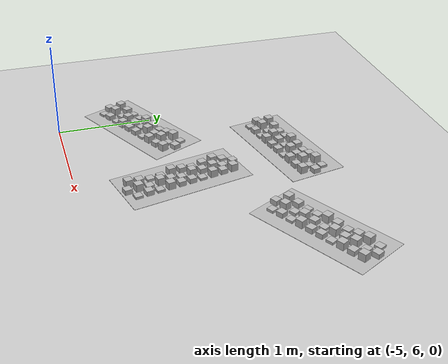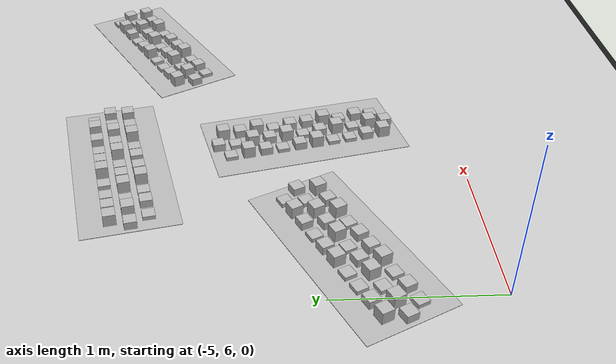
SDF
<sdf version="1.6">
 <world name="default">
  <model name="ground_plane">
   <static>1</static>
   <link name="link">
    <collision name="collision">
     <geometry><plane><normal>0 0 1</normal><size>100 100</size></plane></geometry>
     <surface>
      <contact><collide_bitmask>65535</collide_bitmask></contact>
      <friction><ode><mu>100</mu><mu2>50</mu2></ode></friction>
     </surface>
    </collision>
    <visual name="visual">
     <cast_shadows>0</cast_shadows>
     <geometry><plane><normal>0 0 1</normal><size>100 100</size></plane></geometry>
     <material>
      <script><uri>file://media/materials/scripts/gazebo.material</uri><name>Gazebo/Grey</name></script>
     </material>
    </visual>
   </link>
  </model>
  <model name="frc2016_roughterrain_clone_clone_12_clone_clone_clone_clone_clone_1_clone_clone">
   <static>1</static>
   <link name="link">
    <visual name="platform">
     <pose>0 0 0.08269 0 -0 0</pose>
     <geometry><box><size>1.27 0.5969 0.003175</size></box></geometry>
    </visual>
    <collision name="platform">
     <pose>0 0 0.08269 0 -0 0</pose>
     <geometry><box><size>1.27 0.5969 0.003175</size></box></geometry>
    </collision>
    <visual name="row1_block1_sm">
     <pose>0.51435 0.1143 0.09698 0 -0 0</pose>
     <geometry><box><size>0.0762 0.0762 0.0254</size></box></geometry>
    </visual>
    <collision name="row1_block1_sm">
     <pose>0.51435 0.1143 0.09698 0 -0 0</pose>
     <geometry><box><size>0.0762 0.0762 0.0254</size></box></geometry>
    </collision>
    <visual name="row1_block2_lg">
     <pose>0.40005 0.1143 0.12238 0 -0 0</pose>
     <geometry><box><size>0.0762 0.0762 0.0762</size></box></geometry>
    </visual>
    <collision name="row1_block2_lg">
     <pose>0.40005 0.1143 0.12238 0 -0 0</pose>
     <geometry><box><size>0.0762 0.0762 0.0762</size></box></geometry>
    </collision>
    <visual name="row1_block3_md">
     <pose>0.28575 0.1143 0.10968 0 -0 0</pose>
     <geometry><box><size>0.0762 0.0762 0.0508</size></box></geometry>
    </visual>
    <collision name="row1_block3_md">
     <pose>0.28575 0.1143 0.10968 0 -0 0</pose>
     <geometry><box><size>0.0762 0.0762 0.0508</size></box></geometry>
    </collision>
    <visual name="row1_block4_sm">
     <pose>0.17145 0.1143 0.09698 0 -0 0</pose>
     <geometry><box><size>0.0762 0.0762 0.0254</size></box></geometry>
    </visual>
    <collision name="row1_block4_sm">
     <pose>0.17145 0.1143 0.09698 0 -0 0</pose>
     <geometry><box><size>0.0762 0.0762 0.0254</size></box></geometry>
    </collision>
    <visual name="row1_block5_md">
     <pose>0.05715 0.1143 0.10968 0 -0 0</pose>
     <geometry><box><size>0.0762 0.0762 0.0508</size></box></geometry>
    </visual>
    <collision name="row1_block5_md">
     <pose>0.05715 0.1143 0.10968 0 -0 0</pose>
     <geometry><box><size>0.0762 0.0762 0.0508</size></box></geometry>
    </collision>
    <visual name="row1_block6_lg">
     <pose>-0.05715 0.1143 0.12238 0 -0 0</pose>
     <geometry><box><size>0.0762 0.0762 0.0762</size></box></geometry>
    </visual>
    <collision name="row1_block6_lg">
     <pose>-0.05715 0.1143 0.12238 0 -0 0</pose>
     <geometry><box><size>0.0762 0.0762 0.0762</size></box></geometry>
    </collision>
    <visual name="row1_block7_sm">
     <pose>-0.17145 0.1143 0.09698 0 -0 0</pose>
     <geometry><box><size>0.0762 0.0762 0.0254</size></box></geometry>
    </visual>
    <collision name="row1_block7_sm">
     <pose>-0.17145 0.1143 0.09698 0 -0 0</pose>
     <geometry><box><size>0.0762 0.0762 0.0254</size></box></geometry>
    </collision>
    <visual name="row1_block8_sm">
     <pose>-0.28575 0.1143 0.09698 0 -0 0</pose>
     <geometry><box><size>0.0762 0.0762 0.0254</size></box></geometry>
    </visual>
    <collision name="row1_block8_sm">
     <pose>-0.28575 0.1143 0.09698 0 -0 0</pose>
     <geometry><box><size>0.0762 0.0762 0.0254</size></box></geometry>
    </collision>
    <visual name="row1_block9_md">
     <pose>-0.40005 0.1143 0.10968 0 -0 0</pose>
     <geometry><box><size>0.0762 0.0762 0.0508</size></box></geometry>
    </visual>
    <collision name="row1_block9_md">
     <pose>-0.40005 0.1143 0.10968 0 -0 0</pose>
     <geometry><box><size>0.0762 0.0762 0.0508</size></box></geometry>
    </collision>
    <visual name="row1_block10_lg">
     <pose>-0.51435 0.1143 0.12238 0 -0 0</pose>
     <geometry><box><size>0.0762 0.0762 0.0762</size></box></geometry>
    </visual>
    <collision name="row1_block10_lg">
     <pose>-0.51435 0.1143 0.12238 0 -0 0</pose>
     <geometry><box><size>0.0762 0.0762 0.0762</size></box></geometry>
    </collision>
    <visual name="row2_block1_md">
     <pose>0.5715 0 0.10968 0 -0 0</pose>
     <geometry><box><size>0.0762 0.0762 0.0508</size></box></geometry>
    </visual>
    <collision name="row2_block1_md">
     <pose>0.5715 0 0.10968 0 -0 0</pose>
     <geometry><box><size>0.0762 0.0762 0.0508</size></box></geometry>
    </collision>
    <visual name="row2_block2_sm">
     <pose>0.4572 0 0.09698 0 -0 0</pose>
     <geometry><box><size>0.0762 0.0762 0.0254</size></box></geometry>
    </visual>
    <collision name="row2_block2_sm">
     <pose>0.4572 0 0.09698 0 -0 0</pose>
     <geometry><box><size>0.0762 0.0762 0.0254</size></box></geometry>
    </collision>
    <visual name="row2_block3_lg">
     <pose>0.3429 0 0.12238 0 -0 0</pose>
     <geometry><box><size>0.0762 0.0762 0.0762</size></box></geometry>
    </visual>
    <collision name="row2_block3_lg">
     <pose>0.3429 0 0.12238 0 -0 0</pose>
     <geometry><box><size>0.0762 0.0762 0.0762</size></box></geometry>
    </collision>
    <visual name="row2_block4_md">
     <pose>0.2286 0 0.10968 0 -0 0</pose>
     <geometry><box><size>0.0762 0.0762 0.0508</size></box></geometry>
    </visual>
    <collision name="row2_block4_md">
     <pose>0.2286 0 0.10968 0 -0 0</pose>
     <geometry><box><size>0.0762 0.0762 0.0508</size></box></geometry>
    </collision>
    <visual name="row2_block5_lg">
     <pose>0.1143 0 0.12238 0 -0 0</pose>
     <geometry><box><size>0.0762 0.0762 0.0762</size></box></geometry>
    </visual>
    <collision name="row2_block5_lg">
     <pose>0.1143 0 0.12238 0 -0 0</pose>
     <geometry><box><size>0.0762 0.0762 0.0762</size></box></geometry>
    </collision>
    <visual name="row2_block6_sm">
     <pose>0 0 0.09698 0 -0 0</pose>
     <geometry><box><size>0.0762 0.0762 0.0254</size></box></geometry>
    </visual>
    <collision name="row2_block6_sm">
     <pose>0 0 0.09698 0 -0 0</pose>
     <geometry><box><size>0.0762 0.0762 0.0254</size></box></geometry>
    </collision>
    <visual name="row2_block7_md">
     <pose>-0.1143 0 0.10968 0 -0 0</pose>
     <geometry><box><size>0.0762 0.0762 0.0508</size></box></geometry>
    </visual>
    <collision name="row2_block7_md">
     <pose>-0.1143 0 0.10968 0 -0 0</pose>
     <geometry><box><size>0.0762 0.0762 0.0508</size></box></geometry>
    </collision>
    <visual name="row2_block8_lg">
     <pose>-0.2286 0 0.12238 0 -0 0</pose>
     <geometry><box><size>0.0762 0.0762 0.0762</size></box></geometry>
    </visual>
    <collision name="row2_block8_lg">
     <pose>-0.2286 0 0.12238 0 -0 0</pose>
     <geometry><box><size>0.0762 0.0762 0.0762</size></box></geometry>
    </collision>
    <visual name="row2_block9_sm">
     <pose>-0.3429 0 0.09698 0 -0 0</pose>
     <geometry><box><size>0.0762 0.0762 0.0254</size></box></geometry>
    </visual>
    <collision name="row2_block9_sm">
     <pose>-0.3429 0 0.09698 0 -0 0</pose>
     <geometry><box><size>0.0762 0.0762 0.0254</size></box></geometry>
    </collision>
    <visual name="row2_block10_lg">
     <pose>-0.4572 0 0.12238 0 -0 0</pose>
     <geometry><box><size>0.0762 0.0762 0.0762</size></box></geometry>
    </visual>
    <collision name="row2_block10_lg">
     <pose>-0.4572 0 0.12238 0 -0 0</pose>
     <geometry><box><size>0.0762 0.0762 0.0762</size></box></geometry>
    </collision>
    <visual name="row2_block11_md">
     <pose>-0.5715 0 0.10968 0 -0 0</pose>
     <geometry><box><size>0.0762 0.0762 0.0508</size></box></geometry>
    </visual>
    <collision name="row2_block11_md">
     <pose>-0.5715 0 0.10968 0 -0 0</pose>
     <geometry><box><size>0.0762 0.0762 0.0508</size></box></geometry>
    </collision>
    <visual name="row3_block1_lg">
     <pose>0.51435 -0.1143 0.12238 0 -0 0</pose>
     <geometry><box><size>0.0762 0.0762 0.0762</size></box></geometry>
    </visual>
    <collision name="row3_block1_lg">
     <pose>0.51435 -0.1143 0.12238 0 -0 0</pose>
     <geometry><box><size>0.0762 0.0762 0.0762</size></box></geometry>
    </collision>
    <visual name="row3_block2_md">
     <pose>0.40005 -0.1143 0.10968 0 -0 0</pose>
     <geometry><box><size>0.0762 0.0762 0.0508</size></box></geometry>
    </visual>
    <collision name="row3_block2_md">
     <pose>0.40005 -0.1143 0.10968 0 -0 0</pose>
     <geometry><box><size>0.0762 0.0762 0.0508</size></box></geometry>
    </collision>
    <visual name="row3_block3_lg">
     <pose>0.28575 -0.1143 0.12238 0 -0 0</pose>
     <geometry><box><size>0.0762 0.0762 0.0762</size></box></geometry>
    </visual>
    <collision name="row3_block3_lg">
     <pose>0.28575 -0.1143 0.12238 0 -0 0</pose>
     <geometry><box><size>0.0762 0.0762 0.0762</size></box></geometry>
    </collision>
    <visual name="row3_block4_sm">
     <pose>0.17145 -0.1143 0.09698 0 -0 0</pose>
     <geometry><box><size>0.0762 0.0762 0.0254</size></box></geometry>
    </visual>
    <collision name="row3_block4_sm">
     <pose>0.17145 -0.1143 0.09698 0 -0 0</pose>
     <geometry><box><size>0.0762 0.0762 0.0254</size></box></geometry>
    </collision>
    <visual name="row3_block5_md">
     <pose>0.05715 -0.1143 0.10968 0 -0 0</pose>
     <geometry><box><size>0.0762 0.0762 0.0508</size></box></geometry>
    </visual>
    <collision name="row3_block5_md">
     <pose>0.05715 -0.1143 0.10968 0 -0 0</pose>
     <geometry><box><size>0.0762 0.0762 0.0508</size></box></geometry>
    </collision>
    <visual name="row3_block6_md">
     <pose>-0.05715 -0.1143 0.10968 0 -0 0</pose>
     <geometry><box><size>0.0762 0.0762 0.0508</size></box></geometry>
    </visual>
    <collision name="row3_block6_md">
     <pose>-0.05715 -0.1143 0.10968 0 -0 0</pose>
     <geometry><box><size>0.0762 0.0762 0.0508</size></box></geometry>
    </collision>
    <visual name="row3_block7_lg">
     <pose>-0.17145 -0.1143 0.12238 0 -0 0</pose>
     <geometry><box><size>0.0762 0.0762 0.0762</size></box></geometry>
    </visual>
    <collision name="row3_block7_lg">
     <pose>-0.17145 -0.1143 0.12238 0 -0 0</pose>
     <geometry><box><size>0.0762 0.0762 0.0762</size></box></geometry>
    </collision>
    <visual name="row3_block8_sm">
     <pose>-0.28575 -0.1143 0.09698 0 -0 0</pose>
     <geometry><box><size>0.0762 0.0762 0.0254</size></box></geometry>
    </visual>
    <collision name="row3_block8_sm">
     <pose>-0.28575 -0.1143 0.09698 0 -0 0</pose>
     <geometry><box><size>0.0762 0.0762 0.0254</size></box></geometry>
    </collision>
    <visual name="row3_block9_md">
     <pose>-0.40005 -0.1143 0.10968 0 -0 0</pose>
     <geometry><box><size>0.0762 0.0762 0.0508</size></box></geometry>
    </visual>
    <collision name="row3_block9_md">
     <pose>-0.40005 -0.1143 0.10968 0 -0 0</pose>
     <geometry><box><size>0.0762 0.0762 0.0508</size></box></geometry>
    </collision>
    <visual name="row3_block10_sm">
     <pose>-0.51435 -0.1143 0.09698 0 -0 0</pose>
     <geometry><box><size>0.0762 0.0762 0.0254</size></box></geometry>
    </visual>
    <collision name="row3_block10_sm">
     <pose>-0.51435 -0.1143 0.09698 0 -0 0</pose>
     <geometry><box><size>0.0762 0.0762 0.0254</size></box></geometry>
    </collision>
   </link>
   <pose>-2.40245 8.01789 0 0 -0 0.5</pose>
  </model>
  <model name="frc2016_roughterrain_clone_clone_12_clone_clone_clone_clone_clone_1_clone_clone_0">
   <static>1</static>
   <link name="link">
    <visual name="platform">
     <pose>0 0 0.08269 0 -0 0</pose>
     <geometry><box><size>1.27 0.5969 0.003175</size></box></geometry>
    </visual>
    <collision name="platform">
     <pose>0 0 0.08269 0 -0 0</pose>
     <geometry><box><size>1.27 0.5969 0.003175</size></box></geometry>
    </collision>
    <visual name="row1_block1_sm">
     <pose>0.51435 0.1143 0.09698 0 -0 0</pose>
     <geometry><box><size>0.0762 0.0762 0.0254</size></box></geometry>
    </visual>
    <collision name="row1_block1_sm">
     <pose>0.51435 0.1143 0.09698 0 -0 0</pose>
     <geometry><box><size>0.0762 0.0762 0.0254</size></box></geometry>
    </collision>
    <visual name="row1_block2_lg">
     <pose>0.40005 0.1143 0.12238 0 -0 0</pose>
     <geometry><box><size>0.0762 0.0762 0.0762</size></box></geometry>
    </visual>
    <collision name="row1_block2_lg">
     <pose>0.40005 0.1143 0.12238 0 -0 0</pose>
     <geometry><box><size>0.0762 0.0762 0.0762</size></box></geometry>
    </collision>
    <visual name="row1_block3_md">
     <pose>0.28575 0.1143 0.10968 0 -0 0</pose>
     <geometry><box><size>0.0762 0.0762 0.0508</size></box></geometry>
    </visual>
    <collision name="row1_block3_md">
     <pose>0.28575 0.1143 0.10968 0 -0 0</pose>
     <geometry><box><size>0.0762 0.0762 0.0508</size></box></geometry>
    </collision>
    <visual name="row1_block4_sm">
     <pose>0.17145 0.1143 0.09698 0 -0 0</pose>
     <geometry><box><size>0.0762 0.0762 0.0254</size></box></geometry>
    </visual>
    <collision name="row1_block4_sm">
     <pose>0.17145 0.1143 0.09698 0 -0 0</pose>
     <geometry><box><size>0.0762 0.0762 0.0254</size></box></geometry>
    </collision>
    <visual name="row1_block5_md">
     <pose>0.05715 0.1143 0.10968 0 -0 0</pose>
     <geometry><box><size>0.0762 0.0762 0.0508</size></box></geometry>
    </visual>
    <collision name="row1_block5_md">
     <pose>0.05715 0.1143 0.10968 0 -0 0</pose>
     <geometry><box><size>0.0762 0.0762 0.0508</size></box></geometry>
    </collision>
    <visual name="row1_block6_lg">
     <pose>-0.05715 0.1143 0.12238 0 -0 0</pose>
     <geometry><box><size>0.0762 0.0762 0.0762</size></box></geometry>
    </visual>
    <collision name="row1_block6_lg">
     <pose>-0.05715 0.1143 0.12238 0 -0 0</pose>
     <geometry><box><size>0.0762 0.0762 0.0762</size></box></geometry>
    </collision>
    <visual name="row1_block7_sm">
     <pose>-0.17145 0.1143 0.09698 0 -0 0</pose>
     <geometry><box><size>0.0762 0.0762 0.0254</size></box></geometry>
    </visual>
    <collision name="row1_block7_sm">
     <pose>-0.17145 0.1143 0.09698 0 -0 0</pose>
     <geometry><box><size>0.0762 0.0762 0.0254</size></box></geometry>
    </collision>
    <visual name="row1_block8_sm">
     <pose>-0.28575 0.1143 0.09698 0 -0 0</pose>
     <geometry><box><size>0.0762 0.0762 0.0254</size></box></geometry>
    </visual>
    <collision name="row1_block8_sm">
     <pose>-0.28575 0.1143 0.09698 0 -0 0</pose>
     <geometry><box><size>0.0762 0.0762 0.0254</size></box></geometry>
    </collision>
    <visual name="row1_block9_md">
     <pose>-0.40005 0.1143 0.10968 0 -0 0</pose>
     <geometry><box><size>0.0762 0.0762 0.0508</size></box></geometry>
    </visual>
    <collision name="row1_block9_md">
     <pose>-0.40005 0.1143 0.10968 0 -0 0</pose>
     <geometry><box><size>0.0762 0.0762 0.0508</size></box></geometry>
    </collision>
    <visual name="row1_block10_lg">
     <pose>-0.51435 0.1143 0.12238 0 -0 0</pose>
     <geometry><box><size>0.0762 0.0762 0.0762</size></box></geometry>
    </visual>
    <collision name="row1_block10_lg">
     <pose>-0.51435 0.1143 0.12238 0 -0 0</pose>
     <geometry><box><size>0.0762 0.0762 0.0762</size></box></geometry>
    </collision>
    <visual name="row2_block1_md">
     <pose>0.5715 0 0.10968 0 -0 0</pose>
     <geometry><box><size>0.0762 0.0762 0.0508</size></box></geometry>
    </visual>
    <collision name="row2_block1_md">
     <pose>0.5715 0 0.10968 0 -0 0</pose>
     <geometry><box><size>0.0762 0.0762 0.0508</size></box></geometry>
    </collision>
    <visual name="row2_block2_sm">
     <pose>0.4572 0 0.09698 0 -0 0</pose>
     <geometry><box><size>0.0762 0.0762 0.0254</size></box></geometry>
    </visual>
    <collision name="row2_block2_sm">
     <pose>0.4572 0 0.09698 0 -0 0</pose>
     <geometry><box><size>0.0762 0.0762 0.0254</size></box></geometry>
    </collision>
    <visual name="row2_block3_lg">
     <pose>0.3429 0 0.12238 0 -0 0</pose>
     <geometry><box><size>0.0762 0.0762 0.0762</size></box></geometry>
    </visual>
    <collision name="row2_block3_lg">
     <pose>0.3429 0 0.12238 0 -0 0</pose>
     <geometry><box><size>0.0762 0.0762 0.0762</size></box></geometry>
    </collision>
    <visual name="row2_block4_md">
     <pose>0.2286 0 0.10968 0 -0 0</pose>
     <geometry><box><size>0.0762 0.0762 0.0508</size></box></geometry>
    </visual>
    <collision name="row2_block4_md">
     <pose>0.2286 0 0.10968 0 -0 0</pose>
     <geometry><box><size>0.0762 0.0762 0.0508</size></box></geometry>
    </collision>
    <visual name="row2_block5_lg">
     <pose>0.1143 0 0.12238 0 -0 0</pose>
     <geometry><box><size>0.0762 0.0762 0.0762</size></box></geometry>
    </visual>
    <collision name="row2_block5_lg">
     <pose>0.1143 0 0.12238 0 -0 0</pose>
     <geometry><box><size>0.0762 0.0762 0.0762</size></box></geometry>
    </collision>
    <visual name="row2_block6_sm">
     <pose>0 0 0.09698 0 -0 0</pose>
     <geometry><box><size>0.0762 0.0762 0.0254</size></box></geometry>
    </visual>
    <collision name="row2_block6_sm">
     <pose>0 0 0.09698 0 -0 0</pose>
     <geometry><box><size>0.0762 0.0762 0.0254</size></box></geometry>
    </collision>
    <visual name="row2_block7_md">
     <pose>-0.1143 0 0.10968 0 -0 0</pose>
     <geometry><box><size>0.0762 0.0762 0.0508</size></box></geometry>
    </visual>
    <collision name="row2_block7_md">
     <pose>-0.1143 0 0.10968 0 -0 0</pose>
     <geometry><box><size>0.0762 0.0762 0.0508</size></box></geometry>
    </collision>
    <visual name="row2_block8_lg">
     <pose>-0.2286 0 0.12238 0 -0 0</pose>
     <geometry><box><size>0.0762 0.0762 0.0762</size></box></geometry>
    </visual>
    <collision name="row2_block8_lg">
     <pose>-0.2286 0 0.12238 0 -0 0</pose>
     <geometry><box><size>0.0762 0.0762 0.0762</size></box></geometry>
    </collision>
    <visual name="row2_block9_sm">
     <pose>-0.3429 0 0.09698 0 -0 0</pose>
     <geometry><box><size>0.0762 0.0762 0.0254</size></box></geometry>
    </visual>
    <collision name="row2_block9_sm">
     <pose>-0.3429 0 0.09698 0 -0 0</pose>
     <geometry><box><size>0.0762 0.0762 0.0254</size></box></geometry>
    </collision>
    <visual name="row2_block10_lg">
     <pose>-0.4572 0 0.12238 0 -0 0</pose>
     <geometry><box><size>0.0762 0.0762 0.0762</size></box></geometry>
    </visual>
    <collision name="row2_block10_lg">
     <pose>-0.4572 0 0.12238 0 -0 0</pose>
     <geometry><box><size>0.0762 0.0762 0.0762</size></box></geometry>
    </collision>
    <visual name="row2_block11_md">
     <pose>-0.5715 0 0.10968 0 -0 0</pose>
     <geometry><box><size>0.0762 0.0762 0.0508</size></box></geometry>
    </visual>
    <collision name="row2_block11_md">
     <pose>-0.5715 0 0.10968 0 -0 0</pose>
     <geometry><box><size>0.0762 0.0762 0.0508</size></box></geometry>
    </collision>
    <visual name="row3_block1_lg">
     <pose>0.51435 -0.1143 0.12238 0 -0 0</pose>
     <geometry><box><size>0.0762 0.0762 0.0762</size></box></geometry>
    </visual>
    <collision name="row3_block1_lg">
     <pose>0.51435 -0.1143 0.12238 0 -0 0</pose>
     <geometry><box><size>0.0762 0.0762 0.0762</size></box></geometry>
    </collision>
    <visual name="row3_block2_md">
     <pose>0.40005 -0.1143 0.10968 0 -0 0</pose>
     <geometry><box><size>0.0762 0.0762 0.0508</size></box></geometry>
    </visual>
    <collision name="row3_block2_md">
     <pose>0.40005 -0.1143 0.10968 0 -0 0</pose>
     <geometry><box><size>0.0762 0.0762 0.0508</size></box></geometry>
    </collision>
    <visual name="row3_block3_lg">
     <pose>0.28575 -0.1143 0.12238 0 -0 0</pose>
     <geometry><box><size>0.0762 0.0762 0.0762</size></box></geometry>
    </visual>
    <collision name="row3_block3_lg">
     <pose>0.28575 -0.1143 0.12238 0 -0 0</pose>
     <geometry><box><size>0.0762 0.0762 0.0762</size></box></geometry>
    </collision>
    <visual name="row3_block4_sm">
     <pose>0.17145 -0.1143 0.09698 0 -0 0</pose>
     <geometry><box><size>0.0762 0.0762 0.0254</size></box></geometry>
    </visual>
    <collision name="row3_block4_sm">
     <pose>0.17145 -0.1143 0.09698 0 -0 0</pose>
     <geometry><box><size>0.0762 0.0762 0.0254</size></box></geometry>
    </collision>
    <visual name="row3_block5_md">
     <pose>0.05715 -0.1143 0.10968 0 -0 0</pose>
     <geometry><box><size>0.0762 0.0762 0.0508</size></box></geometry>
    </visual>
    <collision name="row3_block5_md">
     <pose>0.05715 -0.1143 0.10968 0 -0 0</pose>
     <geometry><box><size>0.0762 0.0762 0.0508</size></box></geometry>
    </collision>
    <visual name="row3_block6_md">
     <pose>-0.05715 -0.1143 0.10968 0 -0 0</pose>
     <geometry><box><size>0.0762 0.0762 0.0508</size></box></geometry>
    </visual>
    <collision name="row3_block6_md">
     <pose>-0.05715 -0.1143 0.10968 0 -0 0</pose>
     <geometry><box><size>0.0762 0.0762 0.0508</size></box></geometry>
    </collision>
    <visual name="row3_block7_lg">
     <pose>-0.17145 -0.1143 0.12238 0 -0 0</pose>
     <geometry><box><size>0.0762 0.0762 0.0762</size></box></geometry>
    </visual>
    <collision name="row3_block7_lg">
     <pose>-0.17145 -0.1143 0.12238 0 -0 0</pose>
     <geometry><box><size>0.0762 0.0762 0.0762</size></box></geometry>
    </collision>
    <visual name="row3_block8_sm">
     <pose>-0.28575 -0.1143 0.09698 0 -0 0</pose>
     <geometry><box><size>0.0762 0.0762 0.0254</size></box></geometry>
    </visual>
    <collision name="row3_block8_sm">
     <pose>-0.28575 -0.1143 0.09698 0 -0 0</pose>
     <geometry><box><size>0.0762 0.0762 0.0254</size></box></geometry>
    </collision>
    <visual name="row3_block9_md">
     <pose>-0.40005 -0.1143 0.10968 0 -0 0</pose>
     <geometry><box><size>0.0762 0.0762 0.0508</size></box></geometry>
    </visual>
    <collision name="row3_block9_md">
     <pose>-0.40005 -0.1143 0.10968 0 -0 0</pose>
     <geometry><box><size>0.0762 0.0762 0.0508</size></box></geometry>
    </collision>
    <visual name="row3_block10_sm">
     <pose>-0.51435 -0.1143 0.09698 0 -0 0</pose>
     <geometry><box><size>0.0762 0.0762 0.0254</size></box></geometry>
    </visual>
    <collision name="row3_block10_sm">
     <pose>-0.51435 -0.1143 0.09698 0 -0 0</pose>
     <geometry><box><size>0.0762 0.0762 0.0254</size></box></geometry>
    </collision>
   </link>
   <pose>-3.59319 7.01536 0 0 -0 1.79</pose>
  </model>
  <model name="frc2016_roughterrain_clone_clone_12_clone_clone_clone_clone_clone_clone_1_clone">
   <static>1</static>
   <link name="link">
    <visual name="platform">
     <pose>0 0 0.08269 0 -0 0</pose>
     <geometry><box><size>1.27 0.5969 0.003175</size></box></geometry>
    </visual>
    <collision name="platform">
     <pose>0 0 0.08269 0 -0 0</pose>
     <geometry><box><size>1.27 0.5969 0.003175</size></box></geometry>
    </collision>
    <visual name="row1_block1_sm">
     <pose>0.51435 0.1143 0.09698 0 -0 0</pose>
     <geometry><box><size>0.0762 0.0762 0.0254</size></box></geometry>
    </visual>
    <collision name="row1_block1_sm">
     <pose>0.51435 0.1143 0.09698 0 -0 0</pose>
     <geometry><box><size>0.0762 0.0762 0.0254</size></box></geometry>
    </collision>
    <visual name="row1_block2_lg">
     <pose>0.40005 0.1143 0.12238 0 -0 0</pose>
     <geometry><box><size>0.0762 0.0762 0.0762</size></box></geometry>
    </visual>
    <collision name="row1_block2_lg">
     <pose>0.40005 0.1143 0.12238 0 -0 0</pose>
     <geometry><box><size>0.0762 0.0762 0.0762</size></box></geometry>
    </collision>
    <visual name="row1_block3_md">
     <pose>0.28575 0.1143 0.10968 0 -0 0</pose>
     <geometry><box><size>0.0762 0.0762 0.0508</size></box></geometry>
    </visual>
    <collision name="row1_block3_md">
     <pose>0.28575 0.1143 0.10968 0 -0 0</pose>
     <geometry><box><size>0.0762 0.0762 0.0508</size></box></geometry>
    </collision>
    <visual name="row1_block4_sm">
     <pose>0.17145 0.1143 0.09698 0 -0 0</pose>
     <geometry><box><size>0.0762 0.0762 0.0254</size></box></geometry>
    </visual>
    <collision name="row1_block4_sm">
     <pose>0.17145 0.1143 0.09698 0 -0 0</pose>
     <geometry><box><size>0.0762 0.0762 0.0254</size></box></geometry>
    </collision>
    <visual name="row1_block5_md">
     <pose>0.05715 0.1143 0.10968 0 -0 0</pose>
     <geometry><box><size>0.0762 0.0762 0.0508</size></box></geometry>
    </visual>
    <collision name="row1_block5_md">
     <pose>0.05715 0.1143 0.10968 0 -0 0</pose>
     <geometry><box><size>0.0762 0.0762 0.0508</size></box></geometry>
    </collision>
    <visual name="row1_block6_lg">
     <pose>-0.05715 0.1143 0.12238 0 -0 0</pose>
     <geometry><box><size>0.0762 0.0762 0.0762</size></box></geometry>
    </visual>
    <collision name="row1_block6_lg">
     <pose>-0.05715 0.1143 0.12238 0 -0 0</pose>
     <geometry><box><size>0.0762 0.0762 0.0762</size></box></geometry>
    </collision>
    <visual name="row1_block7_sm">
     <pose>-0.17145 0.1143 0.09698 0 -0 0</pose>
     <geometry><box><size>0.0762 0.0762 0.0254</size></box></geometry>
    </visual>
    <collision name="row1_block7_sm">
     <pose>-0.17145 0.1143 0.09698 0 -0 0</pose>
     <geometry><box><size>0.0762 0.0762 0.0254</size></box></geometry>
    </collision>
    <visual name="row1_block8_sm">
     <pose>-0.28575 0.1143 0.09698 0 -0 0</pose>
     <geometry><box><size>0.0762 0.0762 0.0254</size></box></geometry>
    </visual>
    <collision name="row1_block8_sm">
     <pose>-0.28575 0.1143 0.09698 0 -0 0</pose>
     <geometry><box><size>0.0762 0.0762 0.0254</size></box></geometry>
    </collision>
    <visual name="row1_block9_md">
     <pose>-0.40005 0.1143 0.10968 0 -0 0</pose>
     <geometry><box><size>0.0762 0.0762 0.0508</size></box></geometry>
    </visual>
    <collision name="row1_block9_md">
     <pose>-0.40005 0.1143 0.10968 0 -0 0</pose>
     <geometry><box><size>0.0762 0.0762 0.0508</size></box></geometry>
    </collision>
    <visual name="row1_block10_lg">
     <pose>-0.51435 0.1143 0.12238 0 -0 0</pose>
     <geometry><box><size>0.0762 0.0762 0.0762</size></box></geometry>
    </visual>
    <collision name="row1_block10_lg">
     <pose>-0.51435 0.1143 0.12238 0 -0 0</pose>
     <geometry><box><size>0.0762 0.0762 0.0762</size></box></geometry>
    </collision>
    <visual name="row2_block1_md">
     <pose>0.5715 0 0.10968 0 -0 0</pose>
     <geometry><box><size>0.0762 0.0762 0.0508</size></box></geometry>
    </visual>
    <collision name="row2_block1_md">
     <pose>0.5715 0 0.10968 0 -0 0</pose>
     <geometry><box><size>0.0762 0.0762 0.0508</size></box></geometry>
    </collision>
    <visual name="row2_block2_sm">
     <pose>0.4572 0 0.09698 0 -0 0</pose>
     <geometry><box><size>0.0762 0.0762 0.0254</size></box></geometry>
    </visual>
    <collision name="row2_block2_sm">
     <pose>0.4572 0 0.09698 0 -0 0</pose>
     <geometry><box><size>0.0762 0.0762 0.0254</size></box></geometry>
    </collision>
    <visual name="row2_block3_lg">
     <pose>0.3429 0 0.12238 0 -0 0</pose>
     <geometry><box><size>0.0762 0.0762 0.0762</size></box></geometry>
    </visual>
    <collision name="row2_block3_lg">
     <pose>0.3429 0 0.12238 0 -0 0</pose>
     <geometry><box><size>0.0762 0.0762 0.0762</size></box></geometry>
    </collision>
    <visual name="row2_block4_md">
     <pose>0.2286 0 0.10968 0 -0 0</pose>
     <geometry><box><size>0.0762 0.0762 0.0508</size></box></geometry>
    </visual>
    <collision name="row2_block4_md">
     <pose>0.2286 0 0.10968 0 -0 0</pose>
     <geometry><box><size>0.0762 0.0762 0.0508</size></box></geometry>
    </collision>
    <visual name="row2_block5_lg">
     <pose>0.1143 0 0.12238 0 -0 0</pose>
     <geometry><box><size>0.0762 0.0762 0.0762</size></box></geometry>
    </visual>
    <collision name="row2_block5_lg">
     <pose>0.1143 0 0.12238 0 -0 0</pose>
     <geometry><box><size>0.0762 0.0762 0.0762</size></box></geometry>
    </collision>
    <visual name="row2_block6_sm">
     <pose>0 0 0.09698 0 -0 0</pose>
     <geometry><box><size>0.0762 0.0762 0.0254</size></box></geometry>
    </visual>
    <collision name="row2_block6_sm">
     <pose>0 0 0.09698 0 -0 0</pose>
     <geometry><box><size>0.0762 0.0762 0.0254</size></box></geometry>
    </collision>
    <visual name="row2_block7_md">
     <pose>-0.1143 0 0.10968 0 -0 0</pose>
     <geometry><box><size>0.0762 0.0762 0.0508</size></box></geometry>
    </visual>
    <collision name="row2_block7_md">
     <pose>-0.1143 0 0.10968 0 -0 0</pose>
     <geometry><box><size>0.0762 0.0762 0.0508</size></box></geometry>
    </collision>
    <visual name="row2_block8_lg">
     <pose>-0.2286 0 0.12238 0 -0 0</pose>
     <geometry><box><size>0.0762 0.0762 0.0762</size></box></geometry>
    </visual>
    <collision name="row2_block8_lg">
     <pose>-0.2286 0 0.12238 0 -0 0</pose>
     <geometry><box><size>0.0762 0.0762 0.0762</size></box></geometry>
    </collision>
    <visual name="row2_block9_sm">
     <pose>-0.3429 0 0.09698 0 -0 0</pose>
     <geometry><box><size>0.0762 0.0762 0.0254</size></box></geometry>
    </visual>
    <collision name="row2_block9_sm">
     <pose>-0.3429 0 0.09698 0 -0 0</pose>
     <geometry><box><size>0.0762 0.0762 0.0254</size></box></geometry>
    </collision>
    <visual name="row2_block10_lg">
     <pose>-0.4572 0 0.12238 0 -0 0</pose>
     <geometry><box><size>0.0762 0.0762 0.0762</size></box></geometry>
    </visual>
    <collision name="row2_block10_lg">
     <pose>-0.4572 0 0.12238 0 -0 0</pose>
     <geometry><box><size>0.0762 0.0762 0.0762</size></box></geometry>
    </collision>
    <visual name="row2_block11_md">
     <pose>-0.5715 0 0.10968 0 -0 0</pose>
     <geometry><box><size>0.0762 0.0762 0.0508</size></box></geometry>
    </visual>
    <collision name="row2_block11_md">
     <pose>-0.5715 0 0.10968 0 -0 0</pose>
     <geometry><box><size>0.0762 0.0762 0.0508</size></box></geometry>
    </collision>
    <visual name="row3_block1_lg">
     <pose>0.51435 -0.1143 0.12238 0 -0 0</pose>
     <geometry><box><size>0.0762 0.0762 0.0762</size></box></geometry>
    </visual>
    <collision name="row3_block1_lg">
     <pose>0.51435 -0.1143 0.12238 0 -0 0</pose>
     <geometry><box><size>0.0762 0.0762 0.0762</size></box></geometry>
    </collision>
    <visual name="row3_block2_md">
     <pose>0.40005 -0.1143 0.10968 0 -0 0</pose>
     <geometry><box><size>0.0762 0.0762 0.0508</size></box></geometry>
    </visual>
    <collision name="row3_block2_md">
     <pose>0.40005 -0.1143 0.10968 0 -0 0</pose>
     <geometry><box><size>0.0762 0.0762 0.0508</size></box></geometry>
    </collision>
    <visual name="row3_block3_lg">
     <pose>0.28575 -0.1143 0.12238 0 -0 0</pose>
     <geometry><box><size>0.0762 0.0762 0.0762</size></box></geometry>
    </visual>
    <collision name="row3_block3_lg">
     <pose>0.28575 -0.1143 0.12238 0 -0 0</pose>
     <geometry><box><size>0.0762 0.0762 0.0762</size></box></geometry>
    </collision>
    <visual name="row3_block4_sm">
     <pose>0.17145 -0.1143 0.09698 0 -0 0</pose>
     <geometry><box><size>0.0762 0.0762 0.0254</size></box></geometry>
    </visual>
    <collision name="row3_block4_sm">
     <pose>0.17145 -0.1143 0.09698 0 -0 0</pose>
     <geometry><box><size>0.0762 0.0762 0.0254</size></box></geometry>
    </collision>
    <visual name="row3_block5_md">
     <pose>0.05715 -0.1143 0.10968 0 -0 0</pose>
     <geometry><box><size>0.0762 0.0762 0.0508</size></box></geometry>
    </visual>
    <collision name="row3_block5_md">
     <pose>0.05715 -0.1143 0.10968 0 -0 0</pose>
     <geometry><box><size>0.0762 0.0762 0.0508</size></box></geometry>
    </collision>
    <visual name="row3_block6_md">
     <pose>-0.05715 -0.1143 0.10968 0 -0 0</pose>
     <geometry><box><size>0.0762 0.0762 0.0508</size></box></geometry>
    </visual>
    <collision name="row3_block6_md">
     <pose>-0.05715 -0.1143 0.10968 0 -0 0</pose>
     <geometry><box><size>0.0762 0.0762 0.0508</size></box></geometry>
    </collision>
    <visual name="row3_block7_lg">
     <pose>-0.17145 -0.1143 0.12238 0 -0 0</pose>
     <geometry><box><size>0.0762 0.0762 0.0762</size></box></geometry>
    </visual>
    <collision name="row3_block7_lg">
     <pose>-0.17145 -0.1143 0.12238 0 -0 0</pose>
     <geometry><box><size>0.0762 0.0762 0.0762</size></box></geometry>
    </collision>
    <visual name="row3_block8_sm">
     <pose>-0.28575 -0.1143 0.09698 0 -0 0</pose>
     <geometry><box><size>0.0762 0.0762 0.0254</size></box></geometry>
    </visual>
    <collision name="row3_block8_sm">
     <pose>-0.28575 -0.1143 0.09698 0 -0 0</pose>
     <geometry><box><size>0.0762 0.0762 0.0254</size></box></geometry>
    </collision>
    <visual name="row3_block9_md">
     <pose>-0.40005 -0.1143 0.10968 0 -0 0</pose>
     <geometry><box><size>0.0762 0.0762 0.0508</size></box></geometry>
    </visual>
    <collision name="row3_block9_md">
     <pose>-0.40005 -0.1143 0.10968 0 -0 0</pose>
     <geometry><box><size>0.0762 0.0762 0.0508</size></box></geometry>
    </collision>
    <visual name="row3_block10_sm">
     <pose>-0.51435 -0.1143 0.09698 0 -0 0</pose>
     <geometry><box><size>0.0762 0.0762 0.0254</size></box></geometry>
    </visual>
    <collision name="row3_block10_sm">
     <pose>-0.51435 -0.1143 0.09698 0 -0 0</pose>
     <geometry><box><size>0.0762 0.0762 0.0254</size></box></geometry>
    </collision>
   </link>
   <pose>-3.88728 8.19766 0 0 -0 0.2</pose>
  </model>
  <model name="frc2016_roughterrain_clone_clone_12_clone_clone_clone_clone_0_clone_clone">
   <static>1</static>
   <link name="link">
    <visual name="platform">
     <pose>0 0 0.08269 0 -0 0</pose>
     <geometry><box><size>1.27 0.5969 0.003175</size></box></geometry>
    </visual>
    <collision name="platform">
     <pose>0 0 0.08269 0 -0 0</pose>
     <geometry><box><size>1.27 0.5969 0.003175</size></box></geometry>
    </collision>
    <visual name="row1_block1_sm">
     <pose>0.51435 0.1143 0.09698 0 -0 0</pose>
     <geometry><box><size>0.0762 0.0762 0.0254</size></box></geometry>
    </visual>
    <collision name="row1_block1_sm">
     <pose>0.51435 0.1143 0.09698 0 -0 0</pose>
     <geometry><box><size>0.0762 0.0762 0.0254</size></box></geometry>
    </collision>
    <visual name="row1_block2_lg">
     <pose>0.40005 0.1143 0.12238 0 -0 0</pose>
     <geometry><box><size>0.0762 0.0762 0.0762</size></box></geometry>
    </visual>
    <collision name="row1_block2_lg">
     <pose>0.40005 0.1143 0.12238 0 -0 0</pose>
     <geometry><box><size>0.0762 0.0762 0.0762</size></box></geometry>
    </collision>
    <visual name="row1_block3_md">
     <pose>0.28575 0.1143 0.10968 0 -0 0</pose>
     <geometry><box><size>0.0762 0.0762 0.0508</size></box></geometry>
    </visual>
    <collision name="row1_block3_md">
     <pose>0.28575 0.1143 0.10968 0 -0 0</pose>
     <geometry><box><size>0.0762 0.0762 0.0508</size></box></geometry>
    </collision>
    <visual name="row1_block4_sm">
     <pose>0.17145 0.1143 0.09698 0 -0 0</pose>
     <geometry><box><size>0.0762 0.0762 0.0254</size></box></geometry>
    </visual>
    <collision name="row1_block4_sm">
     <pose>0.17145 0.1143 0.09698 0 -0 0</pose>
     <geometry><box><size>0.0762 0.0762 0.0254</size></box></geometry>
    </collision>
    <visual name="row1_block5_md">
     <pose>0.05715 0.1143 0.10968 0 -0 0</pose>
     <geometry><box><size>0.0762 0.0762 0.0508</size></box></geometry>
    </visual>
    <collision name="row1_block5_md">
     <pose>0.05715 0.1143 0.10968 0 -0 0</pose>
     <geometry><box><size>0.0762 0.0762 0.0508</size></box></geometry>
    </collision>
    <visual name="row1_block6_lg">
     <pose>-0.05715 0.1143 0.12238 0 -0 0</pose>
     <geometry><box><size>0.0762 0.0762 0.0762</size></box></geometry>
    </visual>
    <collision name="row1_block6_lg">
     <pose>-0.05715 0.1143 0.12238 0 -0 0</pose>
     <geometry><box><size>0.0762 0.0762 0.0762</size></box></geometry>
    </collision>
    <visual name="row1_block7_sm">
     <pose>-0.17145 0.1143 0.09698 0 -0 0</pose>
     <geometry><box><size>0.0762 0.0762 0.0254</size></box></geometry>
    </visual>
    <collision name="row1_block7_sm">
     <pose>-0.17145 0.1143 0.09698 0 -0 0</pose>
     <geometry><box><size>0.0762 0.0762 0.0254</size></box></geometry>
    </collision>
    <visual name="row1_block8_sm">
     <pose>-0.28575 0.1143 0.09698 0 -0 0</pose>
     <geometry><box><size>0.0762 0.0762 0.0254</size></box></geometry>
    </visual>
    <collision name="row1_block8_sm">
     <pose>-0.28575 0.1143 0.09698 0 -0 0</pose>
     <geometry><box><size>0.0762 0.0762 0.0254</size></box></geometry>
    </collision>
    <visual name="row1_block9_md">
     <pose>-0.40005 0.1143 0.10968 0 -0 0</pose>
     <geometry><box><size>0.0762 0.0762 0.0508</size></box></geometry>
    </visual>
    <collision name="row1_block9_md">
     <pose>-0.40005 0.1143 0.10968 0 -0 0</pose>
     <geometry><box><size>0.0762 0.0762 0.0508</size></box></geometry>
    </collision>
    <visual name="row1_block10_lg">
     <pose>-0.51435 0.1143 0.12238 0 -0 0</pose>
     <geometry><box><size>0.0762 0.0762 0.0762</size></box></geometry>
    </visual>
    <collision name="row1_block10_lg">
     <pose>-0.51435 0.1143 0.12238 0 -0 0</pose>
     <geometry><box><size>0.0762 0.0762 0.0762</size></box></geometry>
    </collision>
    <visual name="row2_block1_md">
     <pose>0.5715 0 0.10968 0 -0 0</pose>
     <geometry><box><size>0.0762 0.0762 0.0508</size></box></geometry>
    </visual>
    <collision name="row2_block1_md">
     <pose>0.5715 0 0.10968 0 -0 0</pose>
     <geometry><box><size>0.0762 0.0762 0.0508</size></box></geometry>
    </collision>
    <visual name="row2_block2_sm">
     <pose>0.4572 0 0.09698 0 -0 0</pose>
     <geometry><box><size>0.0762 0.0762 0.0254</size></box></geometry>
    </visual>
    <collision name="row2_block2_sm">
     <pose>0.4572 0 0.09698 0 -0 0</pose>
     <geometry><box><size>0.0762 0.0762 0.0254</size></box></geometry>
    </collision>
    <visual name="row2_block3_lg">
     <pose>0.3429 0 0.12238 0 -0 0</pose>
     <geometry><box><size>0.0762 0.0762 0.0762</size></box></geometry>
    </visual>
    <collision name="row2_block3_lg">
     <pose>0.3429 0 0.12238 0 -0 0</pose>
     <geometry><box><size>0.0762 0.0762 0.0762</size></box></geometry>
    </collision>
    <visual name="row2_block4_md">
     <pose>0.2286 0 0.10968 0 -0 0</pose>
     <geometry><box><size>0.0762 0.0762 0.0508</size></box></geometry>
    </visual>
    <collision name="row2_block4_md">
     <pose>0.2286 0 0.10968 0 -0 0</pose>
     <geometry><box><size>0.0762 0.0762 0.0508</size></box></geometry>
    </collision>
    <visual name="row2_block5_lg">
     <pose>0.1143 0 0.12238 0 -0 0</pose>
     <geometry><box><size>0.0762 0.0762 0.0762</size></box></geometry>
    </visual>
    <collision name="row2_block5_lg">
     <pose>0.1143 0 0.12238 0 -0 0</pose>
     <geometry><box><size>0.0762 0.0762 0.0762</size></box></geometry>
    </collision>
    <visual name="row2_block6_sm">
     <pose>0 0 0.09698 0 -0 0</pose>
     <geometry><box><size>0.0762 0.0762 0.0254</size></box></geometry>
    </visual>
    <collision name="row2_block6_sm">
     <pose>0 0 0.09698 0 -0 0</pose>
     <geometry><box><size>0.0762 0.0762 0.0254</size></box></geometry>
    </collision>
    <visual name="row2_block7_md">
     <pose>-0.1143 0 0.10968 0 -0 0</pose>
     <geometry><box><size>0.0762 0.0762 0.0508</size></box></geometry>
    </visual>
    <collision name="row2_block7_md">
     <pose>-0.1143 0 0.10968 0 -0 0</pose>
     <geometry><box><size>0.0762 0.0762 0.0508</size></box></geometry>
    </collision>
    <visual name="row2_block8_lg">
     <pose>-0.2286 0 0.12238 0 -0 0</pose>
     <geometry><box><size>0.0762 0.0762 0.0762</size></box></geometry>
    </visual>
    <collision name="row2_block8_lg">
     <pose>-0.2286 0 0.12238 0 -0 0</pose>
     <geometry><box><size>0.0762 0.0762 0.0762</size></box></geometry>
    </collision>
    <visual name="row2_block9_sm">
     <pose>-0.3429 0 0.09698 0 -0 0</pose>
     <geometry><box><size>0.0762 0.0762 0.0254</size></box></geometry>
    </visual>
    <collision name="row2_block9_sm">
     <pose>-0.3429 0 0.09698 0 -0 0</pose>
     <geometry><box><size>0.0762 0.0762 0.0254</size></box></geometry>
    </collision>
    <visual name="row2_block10_lg">
     <pose>-0.4572 0 0.12238 0 -0 0</pose>
     <geometry><box><size>0.0762 0.0762 0.0762</size></box></geometry>
    </visual>
    <collision name="row2_block10_lg">
     <pose>-0.4572 0 0.12238 0 -0 0</pose>
     <geometry><box><size>0.0762 0.0762 0.0762</size></box></geometry>
    </collision>
    <visual name="row2_block11_md">
     <pose>-0.5715 0 0.10968 0 -0 0</pose>
     <geometry><box><size>0.0762 0.0762 0.0508</size></box></geometry>
    </visual>
    <collision name="row2_block11_md">
     <pose>-0.5715 0 0.10968 0 -0 0</pose>
     <geometry><box><size>0.0762 0.0762 0.0508</size></box></geometry>
    </collision>
    <visual name="row3_block1_lg">
     <pose>0.51435 -0.1143 0.12238 0 -0 0</pose>
     <geometry><box><size>0.0762 0.0762 0.0762</size></box></geometry>
    </visual>
    <collision name="row3_block1_lg">
     <pose>0.51435 -0.1143 0.12238 0 -0 0</pose>
     <geometry><box><size>0.0762 0.0762 0.0762</size></box></geometry>
    </collision>
    <visual name="row3_block2_md">
     <pose>0.40005 -0.1143 0.10968 0 -0 0</pose>
     <geometry><box><size>0.0762 0.0762 0.0508</size></box></geometry>
    </visual>
    <collision name="row3_block2_md">
     <pose>0.40005 -0.1143 0.10968 0 -0 0</pose>
     <geometry><box><size>0.0762 0.0762 0.0508</size></box></geometry>
    </collision>
    <visual name="row3_block3_lg">
     <pose>0.28575 -0.1143 0.12238 0 -0 0</pose>
     <geometry><box><size>0.0762 0.0762 0.0762</size></box></geometry>
    </visual>
    <collision name="row3_block3_lg">
     <pose>0.28575 -0.1143 0.12238 0 -0 0</pose>
     <geometry><box><size>0.0762 0.0762 0.0762</size></box></geometry>
    </collision>
    <visual name="row3_block4_sm">
     <pose>0.17145 -0.1143 0.09698 0 -0 0</pose>
     <geometry><box><size>0.0762 0.0762 0.0254</size></box></geometry>
    </visual>
    <collision name="row3_block4_sm">
     <pose>0.17145 -0.1143 0.09698 0 -0 0</pose>
     <geometry><box><size>0.0762 0.0762 0.0254</size></box></geometry>
    </collision>
    <visual name="row3_block5_md">
     <pose>0.05715 -0.1143 0.10968 0 -0 0</pose>
     <geometry><box><size>0.0762 0.0762 0.0508</size></box></geometry>
    </visual>
    <collision name="row3_block5_md">
     <pose>0.05715 -0.1143 0.10968 0 -0 0</pose>
     <geometry><box><size>0.0762 0.0762 0.0508</size></box></geometry>
    </collision>
    <visual name="row3_block6_md">
     <pose>-0.05715 -0.1143 0.10968 0 -0 0</pose>
     <geometry><box><size>0.0762 0.0762 0.0508</size></box></geometry>
    </visual>
    <collision name="row3_block6_md">
     <pose>-0.05715 -0.1143 0.10968 0 -0 0</pose>
     <geometry><box><size>0.0762 0.0762 0.0508</size></box></geometry>
    </collision>
    <visual name="row3_block7_lg">
     <pose>-0.17145 -0.1143 0.12238 0 -0 0</pose>
     <geometry><box><size>0.0762 0.0762 0.0762</size></box></geometry>
    </visual>
    <collision name="row3_block7_lg">
     <pose>-0.17145 -0.1143 0.12238 0 -0 0</pose>
     <geometry><box><size>0.0762 0.0762 0.0762</size></box></geometry>
    </collision>
    <visual name="row3_block8_sm">
     <pose>-0.28575 -0.1143 0.09698 0 -0 0</pose>
     <geometry><box><size>0.0762 0.0762 0.0254</size></box></geometry>
    </visual>
    <collision name="row3_block8_sm">
     <pose>-0.28575 -0.1143 0.09698 0 -0 0</pose>
     <geometry><box><size>0.0762 0.0762 0.0254</size></box></geometry>
    </collision>
    <visual name="row3_block9_md">
     <pose>-0.40005 -0.1143 0.10968 0 -0 0</pose>
     <geometry><box><size>0.0762 0.0762 0.0508</size></box></geometry>
    </visual>
    <collision name="row3_block9_md">
     <pose>-0.40005 -0.1143 0.10968 0 -0 0</pose>
     <geometry><box><size>0.0762 0.0762 0.0508</size></box></geometry>
    </collision>
    <visual name="row3_block10_sm">
     <pose>-0.51435 -0.1143 0.09698 0 -0 0</pose>
     <geometry><box><size>0.0762 0.0762 0.0254</size></box></geometry>
    </visual>
    <collision name="row3_block10_sm">
     <pose>-0.51435 -0.1143 0.09698 0 -0 0</pose>
     <geometry><box><size>0.0762 0.0762 0.0254</size></box></geometry>
    </collision>
   </link>
   <pose>-4.69354 6.85215 0 0 -0 0.45</pose>
  </model>
  <model name="asphalt_plane">
   <static>1</static>
   <link name="link">
    <collision name="collision"><geometry><box><size>20 20 0.1</size></box></geometry></collision>
    <visual name="visual">
     <cast_shadows>0</cast_shadows>
     <geometry><box><size>20 20 0.1</size></box></geometry>
     <material>
      <script>
       <uri>model://asphalt_plane/materials/scripts</uri>
       <uri>model://asphalt_plane/materials/textures</uri>
       <name>vrc/asphalt</name>
      </script>
     </material>
    </visual>
   </link>
   <pose>-0.308483 -7.98775 0 0 -0 0</pose>
  </model>
 </world>
</sdf>
